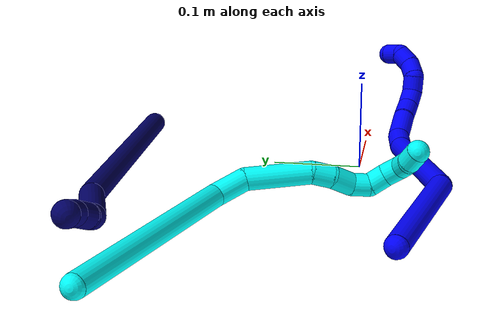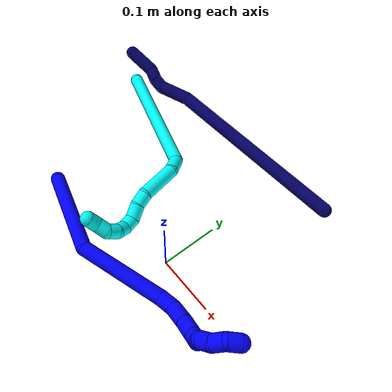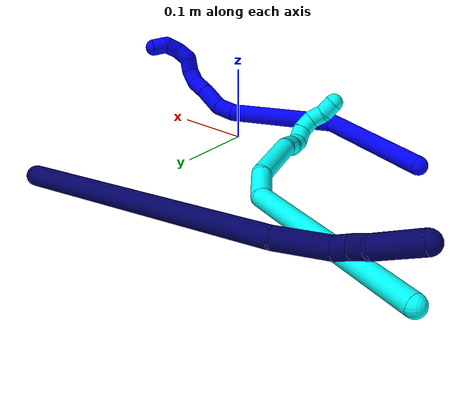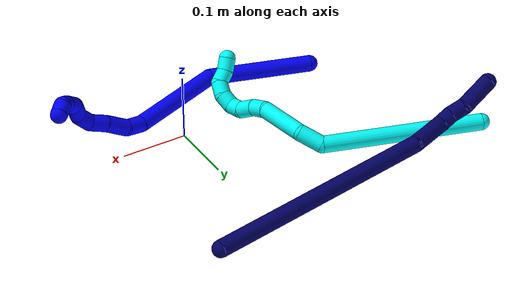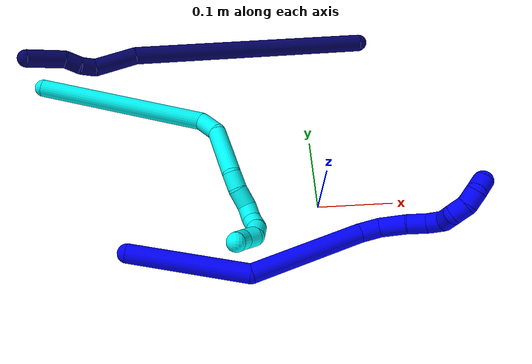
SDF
<sdf version="1.7">
 <world name="default">
  <model name="photoneo_s_sensor">
   <static>1</static>
   <pose>0 0 2 1.57079 1.57079 3.14159</pose>
   <link name="link">
    <inertial><mass>0.1</mass></inertial>
    <sensor name="sensor" type="depth">
     <update_rate>30</update_rate>
     <camera>
      <horizontal_fov>1.22</horizontal_fov>
      <image><width>1920</width><height>1200</height><format>B8G8R8</format></image>
      <clip><near>0.1</near><far>4</far></clip>
      <depth_camera><output>points</output></depth_camera>
     </camera>
     <plugin name="camera_plugin" filename="libgazebo_ros_depth_camera.so">
      <baseline>0.2</baseline>
      <alwaysOn>1</alwaysOn>
      <updateRate>0.0</updateRate>
      <cameraName>camera_ir</cameraName>
      <imageTopicName>/camera/color/image_raw</imageTopicName>
      <cameraInfoTopicName>/camera/color/camera_info</cameraInfoTopicName>
      <depthImageTopicName>/camera/depth/image_raw</depthImageTopicName>
      <depthImageCameraInfoTopicName>/camera/depth/camera_info</depthImageCameraInfoTopicName>
      <pointCloudTopicName>/camera/depth/points</pointCloudTopicName>
      <frameName>fr_optical</frameName>
      <pointCloudCutoff>0.1</pointCloudCutoff>
      <pointCloudCutoffMax>2.0</pointCloudCutoffMax>
      <distortionK1>0</distortionK1>
      <distortionK2>0</distortionK2>
      <distortionK3>0</distortionK3>
      <distortionT1>0</distortionT1>
      <distortionT2>0</distortionT2>
      <CxPrime>0</CxPrime>
      <Cx>0</Cx>
      <Cy>0</Cy>
      <focalLength>0</focalLength>
      <hackBaseline>0</hackBaseline>
     </plugin>
    </sensor>
   </link>
  </model>
  <model name="bin">
   <static>1</static>
   <link name="bottom">
    <collision name="collision-bottom">
     <pose>0 0 -0.01 0 -0 0</pose>
     <geometry><box><size>0.8 0.6 0.02</size></box></geometry>
     <surface>
      <friction><ode><mu>100</mu><mu2>100</mu2></ode></friction>
      <contact><collide_bitmask>65535</collide_bitmask></contact>
     </surface>
    </collision>
   </link>
   <link name="west_wall">
    <collision name="collision-west_wall">
     <pose>-0.41 0 0.1 0 -0 0</pose>
     <geometry><box><size>0.02 0.6 0.2</size></box></geometry>
     <surface>
      <friction><ode><mu>100</mu><mu2>100</mu2></ode></friction>
      <contact><collide_bitmask>65535</collide_bitmask></contact>
     </surface>
    </collision>
   </link>
   <link name="east_wall">
    <collision name="collision-east_wall">
     <pose>0.41 0 0.1 0 -0 0</pose>
     <geometry><box><size>0.02 0.6 0.2</size></box></geometry>
     <surface>
      <friction><ode><mu>100</mu><mu2>100</mu2></ode></friction>
      <contact><collide_bitmask>65535</collide_bitmask></contact>
     </surface>
    </collision>
   </link>
   <link name="south_wall">
    <collision name="collision-south_wall">
     <pose>0 -0.31 0.1 0 -0 0</pose>
     <geometry><box><size>0.8 0.02 0.2</size></box></geometry>
     <surface>
      <friction><ode><mu>100</mu><mu2>100</mu2></ode></friction>
      <contact><collide_bitmask>65535</collide_bitmask></contact>
     </surface>
    </collision>
   </link>
   <link name="north_wall">
    <collision name="collision-north_wall">
     <pose>0 0.31 0.1 0 -0 0</pose>
     <geometry><box><size>0.8 0.02 0.2</size></box></geometry>
     <surface>
      <friction><ode><mu>100</mu><mu2>100</mu2></ode></friction>
      <contact><collide_bitmask>65535</collide_bitmask></contact>
     </surface>
    </collision>
   </link>
  </model>
  <model name="1">
   <static>0</static>
   <link name="1">
    <collision name="collision-cylinder-e_1_1_4">
     <pose>0.017236 0.002004 -0.077901 -3.11587 0.217678 -2.90726</pose>
     <geometry><cylinder><radius>0.0125</radius><length>0.159621</length></cylinder></geometry>
     <surface>
      <friction><ode><mu>1.16</mu><mu2>1.16</mu2><slip1>0</slip1><slip2>0</slip2></ode></friction>
      <contact><ode><kp>1e+06</kp><kd>1</kd><max_vel>0</max_vel><min_depth>0.001</min_depth></ode></contact>
     </surface>
    </collision>
    <visual name="visual-cylinder-e_1_1_4">
     <pose>0.017236 0.002004 -0.077901 -3.11587 0.217678 -2.90726</pose>
     <geometry><cylinder><radius>0.0125</radius><length>0.159621</length></cylinder></geometry>
     <material><ambient>0 0 1 1</ambient></material>
    </visual>
    <collision name="collision-cylinder-e_2_4_5">
     <pose>0.060237 0.044857 -0.214349 -2.53241 0.346358 -1.01555</pose>
     <geometry><cylinder><radius>0.0125</radius><length>0.15179</length></cylinder></geometry>
     <surface>
      <friction><ode><mu>1.16</mu><mu2>1.16</mu2><slip1>0</slip1><slip2>0</slip2></ode></friction>
      <contact><ode><kp>1e+06</kp><kd>1</kd><max_vel>0</max_vel><min_depth>0.001</min_depth></ode></contact>
     </surface>
    </collision>
    <visual name="visual-cylinder-e_2_4_5">
     <pose>0.060237 0.044857 -0.214349 -2.53241 0.346358 -1.01555</pose>
     <geometry><cylinder><radius>0.0125</radius><length>0.15179</length></cylinder></geometry>
     <material><ambient>0 0 1 1</ambient></material>
    </visual>
    <collision name="collision-cylinder-e_3_5_6">
     <pose>0.092342 0.089831 -0.283835 -2.78096 0.496932 -1.89549</pose>
     <geometry><cylinder><radius>0.0125</radius><length>0.026601</length></cylinder></geometry>
     <surface>
      <friction><ode><mu>1.16</mu><mu2>1.16</mu2><slip1>0</slip1><slip2>0</slip2></ode></friction>
      <contact><ode><kp>1e+06</kp><kd>1</kd><max_vel>0</max_vel><min_depth>0.001</min_depth></ode></contact>
     </surface>
    </collision>
    <visual name="visual-cylinder-e_3_5_6">
     <pose>0.092342 0.089831 -0.283835 -2.78096 0.496932 -1.89549</pose>
     <geometry><cylinder><radius>0.0125</radius><length>0.026601</length></cylinder></geometry>
     <material><ambient>0 0 1 1</ambient></material>
    </visual>
    <collision name="collision-cylinder-e_4_6_7">
     <pose>0.109317 0.092621 -0.308574 3.04512 0.654322 2.85898</pose>
     <geometry><cylinder><radius>0.0125</radius><length>0.034946</length></cylinder></geometry>
     <surface>
      <friction><ode><mu>1.16</mu><mu2>1.16</mu2><slip1>0</slip1><slip2>0</slip2></ode></friction>
      <contact><ode><kp>1e+06</kp><kd>1</kd><max_vel>0</max_vel><min_depth>0.001</min_depth></ode></contact>
     </surface>
    </collision>
    <visual name="visual-cylinder-e_4_6_7">
     <pose>0.109317 0.092621 -0.308574 3.04512 0.654322 2.85898</pose>
     <geometry><cylinder><radius>0.0125</radius><length>0.034946</length></cylinder></geometry>
     <material><ambient>0 0 1 1</ambient></material>
    </visual>
    <collision name="collision-cylinder-e_5_7_8">
     <pose>0.126132 0.09102 -0.333576 3.11791 0.504036 3.0497</pose>
     <geometry><cylinder><radius>0.0125</radius><length>0.025593</length></cylinder></geometry>
     <surface>
      <friction><ode><mu>1.16</mu><mu2>1.16</mu2><slip1>0</slip1><slip2>0</slip2></ode></friction>
      <contact><ode><kp>1e+06</kp><kd>1</kd><max_vel>0</max_vel><min_depth>0.001</min_depth></ode></contact>
     </surface>
    </collision>
    <visual name="visual-cylinder-e_5_7_8">
     <pose>0.126132 0.09102 -0.333576 3.11791 0.504036 3.0497</pose>
     <geometry><cylinder><radius>0.0125</radius><length>0.025593</length></cylinder></geometry>
     <material><ambient>0 0 1 1</ambient></material>
    </visual>
    <collision name="collision-cylinder-e_6_8_9">
     <pose>0.139952 0.087854 -0.351361 2.72653 0.815486 2.23444</pose>
     <geometry><cylinder><radius>0.0125</radius><length>0.020986</length></cylinder></geometry>
     <surface>
      <friction><ode><mu>1.16</mu><mu2>1.16</mu2><slip1>0</slip1><slip2>0</slip2></ode></friction>
      <contact><ode><kp>1e+06</kp><kd>1</kd><max_vel>0</max_vel><min_depth>0.001</min_depth></ode></contact>
     </surface>
    </collision>
    <visual name="visual-cylinder-e_6_8_9">
     <pose>0.139952 0.087854 -0.351361 2.72653 0.815486 2.23444</pose>
     <geometry><cylinder><radius>0.0125</radius><length>0.020986</length></cylinder></geometry>
     <material><ambient>0 0 1 1</ambient></material>
    </visual>
    <collision name="collision-cylinder-e_7_9_10">
     <pose>0.15677 0.081054 -0.359055 1.84864 1.15485 1.42433</pose>
     <geometry><cylinder><radius>0.0125</radius><length>0.02007</length></cylinder></geometry>
     <surface>
      <friction><ode><mu>1.16</mu><mu2>1.16</mu2><slip1>0</slip1><slip2>0</slip2></ode></friction>
      <contact><ode><kp>1e+06</kp><kd>1</kd><max_vel>0</max_vel><min_depth>0.001</min_depth></ode></contact>
     </surface>
    </collision>
    <visual name="visual-cylinder-e_7_9_10">
     <pose>0.15677 0.081054 -0.359055 1.84864 1.15485 1.42433</pose>
     <geometry><cylinder><radius>0.0125</radius><length>0.02007</length></cylinder></geometry>
     <material><ambient>0 0 1 1</ambient></material>
    </visual>
    <collision name="collision-cylinder-e_8_10_11">
     <pose>0.174473 0.079323 -0.365291 -2.74133 0.992514 -2.4247</pose>
     <geometry><cylinder><radius>0.0125</radius><length>0.020356</length></cylinder></geometry>
     <surface>
      <friction><ode><mu>1.16</mu><mu2>1.16</mu2><slip1>0</slip1><slip2>0</slip2></ode></friction>
      <contact><ode><kp>1e+06</kp><kd>1</kd><max_vel>0</max_vel><min_depth>0.001</min_depth></ode></contact>
     </surface>
    </collision>
    <visual name="visual-cylinder-e_8_10_11">
     <pose>0.174473 0.079323 -0.365291 -2.74133 0.992514 -2.4247</pose>
     <geometry><cylinder><radius>0.0125</radius><length>0.020356</length></cylinder></geometry>
     <material><ambient>0 0 1 1</ambient></material>
    </visual>
    <collision name="collision-cylinder-e_9_11_12">
     <pose>0.191255 0.086582 -0.372851 -2.01718 0.971278 -1.39467</pose>
     <geometry><cylinder><radius>0.0125</radius><length>0.020007</length></cylinder></geometry>
     <surface>
      <friction><ode><mu>1.16</mu><mu2>1.16</mu2><slip1>0</slip1><slip2>0</slip2></ode></friction>
      <contact><ode><kp>1e+06</kp><kd>1</kd><max_vel>0</max_vel><min_depth>0.001</min_depth></ode></contact>
     </surface>
    </collision>
    <visual name="visual-cylinder-e_9_11_12">
     <pose>0.191255 0.086582 -0.372851 -2.01718 0.971278 -1.39467</pose>
     <geometry><cylinder><radius>0.0125</radius><length>0.020007</length></cylinder></geometry>
     <material><ambient>0 0 1 1</ambient></material>
    </visual>
    <collision name="collision-cylinder-e_10_12_2">
     <pose>0.202468 0.100505 -0.378971 -1.96585 0.299445 -0.445182</pose>
     <geometry><cylinder><radius>0.0125</radius><length>0.02003</length></cylinder></geometry>
     <surface>
      <friction><ode><mu>1.16</mu><mu2>1.16</mu2><slip1>0</slip1><slip2>0</slip2></ode></friction>
      <contact><ode><kp>1e+06</kp><kd>1</kd><max_vel>0</max_vel><min_depth>0.001</min_depth></ode></contact>
     </surface>
    </collision>
    <visual name="visual-cylinder-e_10_12_2">
     <pose>0.202468 0.100505 -0.378971 -1.96585 0.299445 -0.445182</pose>
     <geometry><cylinder><radius>0.0125</radius><length>0.02003</length></cylinder></geometry>
     <material><ambient>0 0 1 1</ambient></material>
    </visual>
    <collision name="collision-sphere-2">
     <pose>0.205422 0.109338 -0.382653 0 -0 0</pose>
     <geometry><sphere><radius>0.0125</radius></sphere></geometry>
     <surface>
      <friction><ode><mu>1.16</mu><mu2>1.16</mu2><slip1>0</slip1><slip2>0</slip2></ode></friction>
      <contact><ode><kp>1e+06</kp><kd>1</kd><max_vel>0</max_vel><min_depth>0.001</min_depth></ode></contact>
     </surface>
    </collision>
    <visual name="visual-sphere-2">
     <pose>0.205422 0.109338 -0.382653 0 -0 0</pose>
     <geometry><sphere><radius>0.0125</radius></sphere></geometry>
     <material><ambient>0 0 1 1</ambient></material>
    </visual>
    <collision name="collision-sphere-12">
     <pose>0.199514 0.091673 -0.375288 0 -0 0</pose>
     <geometry><sphere><radius>0.0125</radius></sphere></geometry>
     <surface>
      <friction><ode><mu>1.16</mu><mu2>1.16</mu2><slip1>0</slip1><slip2>0</slip2></ode></friction>
      <contact><ode><kp>1e+06</kp><kd>1</kd><max_vel>0</max_vel><min_depth>0.001</min_depth></ode></contact>
     </surface>
    </collision>
    <visual name="visual-sphere-12">
     <pose>0.199514 0.091673 -0.375288 0 -0 0</pose>
     <geometry><sphere><radius>0.0125</radius></sphere></geometry>
     <material><ambient>0 0 1 1</ambient></material>
    </visual>
    <collision name="collision-sphere-11">
     <pose>0.182996 0.08149 -0.370414 0 -0 0</pose>
     <geometry><sphere><radius>0.0125</radius></sphere></geometry>
     <surface>
      <friction><ode><mu>1.16</mu><mu2>1.16</mu2><slip1>0</slip1><slip2>0</slip2></ode></friction>
      <contact><ode><kp>1e+06</kp><kd>1</kd><max_vel>0</max_vel><min_depth>0.001</min_depth></ode></contact>
     </surface>
    </collision>
    <visual name="visual-sphere-11">
     <pose>0.182996 0.08149 -0.370414 0 -0 0</pose>
     <geometry><sphere><radius>0.0125</radius></sphere></geometry>
     <material><ambient>0 0 1 1</ambient></material>
    </visual>
    <collision name="collision-sphere-10">
     <pose>0.16595 0.077155 -0.360167 0 -0 0</pose>
     <geometry><sphere><radius>0.0125</radius></sphere></geometry>
     <surface>
      <friction><ode><mu>1.16</mu><mu2>1.16</mu2><slip1>0</slip1><slip2>0</slip2></ode></friction>
      <contact><ode><kp>1e+06</kp><kd>1</kd><max_vel>0</max_vel><min_depth>0.001</min_depth></ode></contact>
     </surface>
    </collision>
    <visual name="visual-sphere-10">
     <pose>0.16595 0.077155 -0.360167 0 -0 0</pose>
     <geometry><sphere><radius>0.0125</radius></sphere></geometry>
     <material><ambient>0 0 1 1</ambient></material>
    </visual>
    <collision name="collision-sphere-9">
     <pose>0.147591 0.084953 -0.357943 0 -0 0</pose>
     <geometry><sphere><radius>0.0125</radius></sphere></geometry>
     <surface>
      <friction><ode><mu>1.16</mu><mu2>1.16</mu2><slip1>0</slip1><slip2>0</slip2></ode></friction>
      <contact><ode><kp>1e+06</kp><kd>1</kd><max_vel>0</max_vel><min_depth>0.001</min_depth></ode></contact>
     </surface>
    </collision>
    <visual name="visual-sphere-9">
     <pose>0.147591 0.084953 -0.357943 0 -0 0</pose>
     <geometry><sphere><radius>0.0125</radius></sphere></geometry>
     <material><ambient>0 0 1 1</ambient></material>
    </visual>
    <collision name="collision-sphere-4">
     <pose>0.034472 0.004008 -0.155803 0 -0 0</pose>
     <geometry><sphere><radius>0.0125</radius></sphere></geometry>
     <surface>
      <friction><ode><mu>1.16</mu><mu2>1.16</mu2><slip1>0</slip1><slip2>0</slip2></ode></friction>
      <contact><ode><kp>1e+06</kp><kd>1</kd><max_vel>0</max_vel><min_depth>0.001</min_depth></ode></contact>
     </surface>
    </collision>
    <visual name="visual-sphere-4">
     <pose>0.034472 0.004008 -0.155803 0 -0 0</pose>
     <geometry><sphere><radius>0.0125</radius></sphere></geometry>
     <material><ambient>0 0 1 1</ambient></material>
    </visual>
    <collision name="collision-sphere-1">
     <geometry><sphere><radius>0.0125</radius></sphere></geometry>
     <surface>
      <friction><ode><mu>1.16</mu><mu2>1.16</mu2><slip1>0</slip1><slip2>0</slip2></ode></friction>
      <contact><ode><kp>1e+06</kp><kd>1</kd><max_vel>0</max_vel><min_depth>0.001</min_depth></ode></contact>
     </surface>
    </collision>
    <visual name="visual-sphere-1">
     <geometry><sphere><radius>0.0125</radius></sphere></geometry>
     <material><ambient>0 0 1 1</ambient></material>
    </visual>
    <collision name="collision-sphere-8">
     <pose>0.132312 0.090755 -0.344778 0 -0 0</pose>
     <geometry><sphere><radius>0.0125</radius></sphere></geometry>
     <surface>
      <friction><ode><mu>1.16</mu><mu2>1.16</mu2><slip1>0</slip1><slip2>0</slip2></ode></friction>
      <contact><ode><kp>1e+06</kp><kd>1</kd><max_vel>0</max_vel><min_depth>0.001</min_depth></ode></contact>
     </surface>
    </collision>
    <visual name="visual-sphere-8">
     <pose>0.132312 0.090755 -0.344778 0 -0 0</pose>
     <geometry><sphere><radius>0.0125</radius></sphere></geometry>
     <material><ambient>0 0 1 1</ambient></material>
    </visual>
    <collision name="collision-sphere-5">
     <pose>0.086001 0.085705 -0.272895 0 -0 0</pose>
     <geometry><sphere><radius>0.0125</radius></sphere></geometry>
     <surface>
      <friction><ode><mu>1.16</mu><mu2>1.16</mu2><slip1>0</slip1><slip2>0</slip2></ode></friction>
      <contact><ode><kp>1e+06</kp><kd>1</kd><max_vel>0</max_vel><min_depth>0.001</min_depth></ode></contact>
     </surface>
    </collision>
    <visual name="visual-sphere-5">
     <pose>0.086001 0.085705 -0.272895 0 -0 0</pose>
     <geometry><sphere><radius>0.0125</radius></sphere></geometry>
     <material><ambient>0 0 1 1</ambient></material>
    </visual>
    <collision name="collision-sphere-6">
     <pose>0.098682 0.093956 -0.294775 0 -0 0</pose>
     <geometry><sphere><radius>0.0125</radius></sphere></geometry>
     <surface>
      <friction><ode><mu>1.16</mu><mu2>1.16</mu2><slip1>0</slip1><slip2>0</slip2></ode></friction>
      <contact><ode><kp>1e+06</kp><kd>1</kd><max_vel>0</max_vel><min_depth>0.001</min_depth></ode></contact>
     </surface>
    </collision>
    <visual name="visual-sphere-6">
     <pose>0.098682 0.093956 -0.294775 0 -0 0</pose>
     <geometry><sphere><radius>0.0125</radius></sphere></geometry>
     <material><ambient>0 0 1 1</ambient></material>
    </visual>
    <collision name="collision-sphere-7">
     <pose>0.119951 0.091285 -0.322374 0 -0 0</pose>
     <geometry><sphere><radius>0.0125</radius></sphere></geometry>
     <surface>
      <friction><ode><mu>1.16</mu><mu2>1.16</mu2><slip1>0</slip1><slip2>0</slip2></ode></friction>
      <contact><ode><kp>1e+06</kp><kd>1</kd><max_vel>0</max_vel><min_depth>0.001</min_depth></ode></contact>
     </surface>
    </collision>
    <visual name="visual-sphere-7">
     <pose>0.119951 0.091285 -0.322374 0 -0 0</pose>
     <geometry><sphere><radius>0.0125</radius></sphere></geometry>
     <material><ambient>0 0 1 1</ambient></material>
    </visual>
    <inertial>
     <pose>0.077832 0.04783 -0.217816 0 -0 0</pose>
     <mass>0.5</mass>
     <inertia>
      <ixx>-0.000488</ixx>
      <ixy>0</ixy>
      <ixz>0</ixz>
      <iyy>-3.9e-05</iyy>
      <iyz>0</iyz>
      <izz>-0.000387</izz>
     </inertia>
    </inertial>
   </link>
   <pose>-0.251462 -0.054768 0.011497 -1.23347 -1.10526 0.906471</pose>
  </model>
  <model name="3">
   <static>0</static>
   <link name="3">
    <collision name="collision-cylinder-e_1_1_4">
     <pose>0.018949 -0.042752 -0.111891 2.77663 0.1569 0.805422</pose>
     <geometry><cylinder><radius>0.0125</radius><length>0.242539</length></cylinder></geometry>
     <surface>
      <friction><ode><mu>1.16</mu><mu2>1.16</mu2><slip1>0</slip1><slip2>0</slip2></ode></friction>
      <contact><ode><kp>1e+06</kp><kd>1</kd><max_vel>0</max_vel><min_depth>0.001</min_depth></ode></contact>
     </surface>
    </collision>
    <visual name="visual-cylinder-e_1_1_4">
     <pose>0.018949 -0.042752 -0.111891 2.77663 0.1569 0.805422</pose>
     <geometry><cylinder><radius>0.0125</radius><length>0.242539</length></cylinder></geometry>
     <material><ambient>0.003922 1 0.996078 1</ambient></material>
    </visual>
    <collision name="collision-cylinder-e_2_4_5">
     <pose>0.041914 -0.101374 -0.232384 2.0675 0.218868 0.364953</pose>
     <geometry><cylinder><radius>0.0125</radius><length>0.036987</length></cylinder></geometry>
     <surface>
      <friction><ode><mu>1.16</mu><mu2>1.16</mu2><slip1>0</slip1><slip2>0</slip2></ode></friction>
      <contact><ode><kp>1e+06</kp><kd>1</kd><max_vel>0</max_vel><min_depth>0.001</min_depth></ode></contact>
     </surface>
    </collision>
    <visual name="visual-cylinder-e_2_4_5">
     <pose>0.041914 -0.101374 -0.232384 2.0675 0.218868 0.364953</pose>
     <geometry><cylinder><radius>0.0125</radius><length>0.036987</length></cylinder></geometry>
     <material><ambient>0.003922 1 0.996078 1</ambient></material>
    </visual>
    <collision name="collision-cylinder-e_3_5_6">
     <pose>0.039726 -0.151547 -0.248789 1.79447 -0.174535 -0.218382</pose>
     <geometry><cylinder><radius>0.0125</radius><length>0.071442</length></cylinder></geometry>
     <surface>
      <friction><ode><mu>1.16</mu><mu2>1.16</mu2><slip1>0</slip1><slip2>0</slip2></ode></friction>
      <contact><ode><kp>1e+06</kp><kd>1</kd><max_vel>0</max_vel><min_depth>0.001</min_depth></ode></contact>
     </surface>
    </collision>
    <visual name="visual-cylinder-e_3_5_6">
     <pose>0.039726 -0.151547 -0.248789 1.79447 -0.174535 -0.218382</pose>
     <geometry><cylinder><radius>0.0125</radius><length>0.071442</length></cylinder></geometry>
     <material><ambient>0.003922 1 0.996078 1</ambient></material>
    </visual>
    <collision name="collision-cylinder-e_4_6_7">
     <pose>0.028199 -0.195252 -0.260893 1.9998 -0.475509 -0.721635</pose>
     <geometry><cylinder><radius>0.0125</radius><length>0.023262</length></cylinder></geometry>
     <surface>
      <friction><ode><mu>1.16</mu><mu2>1.16</mu2><slip1>0</slip1><slip2>0</slip2></ode></friction>
      <contact><ode><kp>1e+06</kp><kd>1</kd><max_vel>0</max_vel><min_depth>0.001</min_depth></ode></contact>
     </surface>
    </collision>
    <visual name="visual-cylinder-e_4_6_7">
     <pose>0.028199 -0.195252 -0.260893 1.9998 -0.475509 -0.721635</pose>
     <geometry><cylinder><radius>0.0125</radius><length>0.023262</length></cylinder></geometry>
     <material><ambient>0.003922 1 0.996078 1</ambient></material>
    </visual>
    <collision name="collision-cylinder-e_5_7_8">
     <pose>0.016056 -0.212527 -0.272218 2.29933 -0.573819 -1.16493</pose>
     <geometry><cylinder><radius>0.0125</radius><length>0.025121</length></cylinder></geometry>
     <surface>
      <friction><ode><mu>1.16</mu><mu2>1.16</mu2><slip1>0</slip1><slip2>0</slip2></ode></friction>
      <contact><ode><kp>1e+06</kp><kd>1</kd><max_vel>0</max_vel><min_depth>0.001</min_depth></ode></contact>
     </surface>
    </collision>
    <visual name="visual-cylinder-e_5_7_8">
     <pose>0.016056 -0.212527 -0.272218 2.29933 -0.573819 -1.16493</pose>
     <geometry><cylinder><radius>0.0125</radius><length>0.025121</length></cylinder></geometry>
     <material><ambient>0.003922 1 0.996078 1</ambient></material>
    </visual>
    <collision name="collision-cylinder-e_6_8_9">
     <pose>0.006179 -0.229511 -0.282061 1.87097 -0.310225 -0.417981</pose>
     <geometry><cylinder><radius>0.0125</radius><length>0.020036</length></cylinder></geometry>
     <surface>
      <friction><ode><mu>1.16</mu><mu2>1.16</mu2><slip1>0</slip1><slip2>0</slip2></ode></friction>
      <contact><ode><kp>1e+06</kp><kd>1</kd><max_vel>0</max_vel><min_depth>0.001</min_depth></ode></contact>
     </surface>
    </collision>
    <visual name="visual-cylinder-e_6_8_9">
     <pose>0.006179 -0.229511 -0.282061 1.87097 -0.310225 -0.417981</pose>
     <geometry><cylinder><radius>0.0125</radius><length>0.020036</length></cylinder></geometry>
     <material><ambient>0.003922 1 0.996078 1</ambient></material>
    </visual>
    <collision name="collision-cylinder-e_7_9_10">
     <pose>0.00601 -0.248278 -0.285973 1.68334 0.289002 0.322939</pose>
     <geometry><cylinder><radius>0.0125</radius><length>0.020272</length></cylinder></geometry>
     <surface>
      <friction><ode><mu>1.16</mu><mu2>1.16</mu2><slip1>0</slip1><slip2>0</slip2></ode></friction>
      <contact><ode><kp>1e+06</kp><kd>1</kd><max_vel>0</max_vel><min_depth>0.001</min_depth></ode></contact>
     </surface>
    </collision>
    <visual name="visual-cylinder-e_7_9_10">
     <pose>0.00601 -0.248278 -0.285973 1.68334 0.289002 0.322939</pose>
     <geometry><cylinder><radius>0.0125</radius><length>0.020272</length></cylinder></geometry>
     <material><ambient>0.003922 1 0.996078 1</ambient></material>
    </visual>
    <collision name="collision-cylinder-e_8_10_11">
     <pose>0.011025 -0.267317 -0.28377 1.2332 0.2106 0.149545</pose>
     <geometry><cylinder><radius>0.0125</radius><length>0.020342</length></cylinder></geometry>
     <surface>
      <friction><ode><mu>1.16</mu><mu2>1.16</mu2><slip1>0</slip1><slip2>0</slip2></ode></friction>
      <contact><ode><kp>1e+06</kp><kd>1</kd><max_vel>0</max_vel><min_depth>0.001</min_depth></ode></contact>
     </surface>
    </collision>
    <visual name="visual-cylinder-e_8_10_11">
     <pose>0.011025 -0.267317 -0.28377 1.2332 0.2106 0.149545</pose>
     <geometry><cylinder><radius>0.0125</radius><length>0.020342</length></cylinder></geometry>
     <material><ambient>0.003922 1 0.996078 1</ambient></material>
    </visual>
    <collision name="collision-cylinder-e_9_11_12">
     <pose>0.014802 -0.281755 -0.272005 0.537923 0.165824 0.045805</pose>
     <geometry><cylinder><radius>0.0125</radius><length>0.02</length></cylinder></geometry>
     <surface>
      <friction><ode><mu>1.16</mu><mu2>1.16</mu2><slip1>0</slip1><slip2>0</slip2></ode></friction>
      <contact><ode><kp>1e+06</kp><kd>1</kd><max_vel>0</max_vel><min_depth>0.001</min_depth></ode></contact>
     </surface>
    </collision>
    <visual name="visual-cylinder-e_9_11_12">
     <pose>0.014802 -0.281755 -0.272005 0.537923 0.165824 0.045805</pose>
     <geometry><cylinder><radius>0.0125</radius><length>0.02</length></cylinder></geometry>
     <material><ambient>0.003922 1 0.996078 1</ambient></material>
    </visual>
    <collision name="collision-cylinder-e_10_12_2">
     <pose>0.020629 -0.2932 -0.257078 0.780242 0.430861 0.179478</pose>
     <geometry><cylinder><radius>0.0125</radius><length>0.02</length></cylinder></geometry>
     <surface>
      <friction><ode><mu>1.16</mu><mu2>1.16</mu2><slip1>0</slip1><slip2>0</slip2></ode></friction>
      <contact><ode><kp>1e+06</kp><kd>1</kd><max_vel>0</max_vel><min_depth>0.001</min_depth></ode></contact>
     </surface>
    </collision>
    <visual name="visual-cylinder-e_10_12_2">
     <pose>0.020629 -0.2932 -0.257078 0.780242 0.430861 0.179478</pose>
     <geometry><cylinder><radius>0.0125</radius><length>0.02</length></cylinder></geometry>
     <material><ambient>0.003922 1 0.996078 1</ambient></material>
    </visual>
    <collision name="collision-sphere-2">
     <pose>0.024806 -0.299592 -0.25062 0 -0 0</pose>
     <geometry><sphere><radius>0.0125</radius></sphere></geometry>
     <surface>
      <friction><ode><mu>1.16</mu><mu2>1.16</mu2><slip1>0</slip1><slip2>0</slip2></ode></friction>
      <contact><ode><kp>1e+06</kp><kd>1</kd><max_vel>0</max_vel><min_depth>0.001</min_depth></ode></contact>
     </surface>
    </collision>
    <visual name="visual-sphere-2">
     <pose>0.024806 -0.299592 -0.25062 0 -0 0</pose>
     <geometry><sphere><radius>0.0125</radius></sphere></geometry>
     <material><ambient>0.003922 1 0.996078 1</ambient></material>
    </visual>
    <collision name="collision-sphere-12">
     <pose>0.016452 -0.286808 -0.263535 0 -0 0</pose>
     <geometry><sphere><radius>0.0125</radius></sphere></geometry>
     <surface>
      <friction><ode><mu>1.16</mu><mu2>1.16</mu2><slip1>0</slip1><slip2>0</slip2></ode></friction>
      <contact><ode><kp>1e+06</kp><kd>1</kd><max_vel>0</max_vel><min_depth>0.001</min_depth></ode></contact>
     </surface>
    </collision>
    <visual name="visual-sphere-12">
     <pose>0.016452 -0.286808 -0.263535 0 -0 0</pose>
     <geometry><sphere><radius>0.0125</radius></sphere></geometry>
     <material><ambient>0.003922 1 0.996078 1</ambient></material>
    </visual>
    <collision name="collision-sphere-11">
     <pose>0.013151 -0.276702 -0.280475 0 -0 0</pose>
     <geometry><sphere><radius>0.0125</radius></sphere></geometry>
     <surface>
      <friction><ode><mu>1.16</mu><mu2>1.16</mu2><slip1>0</slip1><slip2>0</slip2></ode></friction>
      <contact><ode><kp>1e+06</kp><kd>1</kd><max_vel>0</max_vel><min_depth>0.001</min_depth></ode></contact>
     </surface>
    </collision>
    <visual name="visual-sphere-11">
     <pose>0.013151 -0.276702 -0.280475 0 -0 0</pose>
     <geometry><sphere><radius>0.0125</radius></sphere></geometry>
     <material><ambient>0.003922 1 0.996078 1</ambient></material>
    </visual>
    <collision name="collision-sphere-10">
     <pose>0.008899 -0.257932 -0.287064 0 -0 0</pose>
     <geometry><sphere><radius>0.0125</radius></sphere></geometry>
     <surface>
      <friction><ode><mu>1.16</mu><mu2>1.16</mu2><slip1>0</slip1><slip2>0</slip2></ode></friction>
      <contact><ode><kp>1e+06</kp><kd>1</kd><max_vel>0</max_vel><min_depth>0.001</min_depth></ode></contact>
     </surface>
    </collision>
    <visual name="visual-sphere-10">
     <pose>0.008899 -0.257932 -0.287064 0 -0 0</pose>
     <geometry><sphere><radius>0.0125</radius></sphere></geometry>
     <material><ambient>0.003922 1 0.996078 1</ambient></material>
    </visual>
    <collision name="collision-sphere-9">
     <pose>0.003121 -0.238624 -0.284882 0 -0 0</pose>
     <geometry><sphere><radius>0.0125</radius></sphere></geometry>
     <surface>
      <friction><ode><mu>1.16</mu><mu2>1.16</mu2><slip1>0</slip1><slip2>0</slip2></ode></friction>
      <contact><ode><kp>1e+06</kp><kd>1</kd><max_vel>0</max_vel><min_depth>0.001</min_depth></ode></contact>
     </surface>
    </collision>
    <visual name="visual-sphere-9">
     <pose>0.003121 -0.238624 -0.284882 0 -0 0</pose>
     <geometry><sphere><radius>0.0125</radius></sphere></geometry>
     <material><ambient>0.003922 1 0.996078 1</ambient></material>
    </visual>
    <collision name="collision-sphere-4">
     <pose>0.037898 -0.085503 -0.223781 0 -0 0</pose>
     <geometry><sphere><radius>0.0125</radius></sphere></geometry>
     <surface>
      <friction><ode><mu>1.16</mu><mu2>1.16</mu2><slip1>0</slip1><slip2>0</slip2></ode></friction>
      <contact><ode><kp>1e+06</kp><kd>1</kd><max_vel>0</max_vel><min_depth>0.001</min_depth></ode></contact>
     </surface>
    </collision>
    <visual name="visual-sphere-4">
     <pose>0.037898 -0.085503 -0.223781 0 -0 0</pose>
     <geometry><sphere><radius>0.0125</radius></sphere></geometry>
     <material><ambient>0.003922 1 0.996078 1</ambient></material>
    </visual>
    <collision name="collision-sphere-1">
     <geometry><sphere><radius>0.0125</radius></sphere></geometry>
     <surface>
      <friction><ode><mu>1.16</mu><mu2>1.16</mu2><slip1>0</slip1><slip2>0</slip2></ode></friction>
      <contact><ode><kp>1e+06</kp><kd>1</kd><max_vel>0</max_vel><min_depth>0.001</min_depth></ode></contact>
     </surface>
    </collision>
    <visual name="visual-sphere-1">
     <geometry><sphere><radius>0.0125</radius></sphere></geometry>
     <material><ambient>0.003922 1 0.996078 1</ambient></material>
    </visual>
    <collision name="collision-sphere-8">
     <pose>0.009238 -0.220398 -0.279241 0 -0 0</pose>
     <geometry><sphere><radius>0.0125</radius></sphere></geometry>
     <surface>
      <friction><ode><mu>1.16</mu><mu2>1.16</mu2><slip1>0</slip1><slip2>0</slip2></ode></friction>
      <contact><ode><kp>1e+06</kp><kd>1</kd><max_vel>0</max_vel><min_depth>0.001</min_depth></ode></contact>
     </surface>
    </collision>
    <visual name="visual-sphere-8">
     <pose>0.009238 -0.220398 -0.279241 0 -0 0</pose>
     <geometry><sphere><radius>0.0125</radius></sphere></geometry>
     <material><ambient>0.003922 1 0.996078 1</ambient></material>
    </visual>
    <collision name="collision-sphere-5">
     <pose>0.045929 -0.117245 -0.240986 0 -0 0</pose>
     <geometry><sphere><radius>0.0125</radius></sphere></geometry>
     <surface>
      <friction><ode><mu>1.16</mu><mu2>1.16</mu2><slip1>0</slip1><slip2>0</slip2></ode></friction>
      <contact><ode><kp>1e+06</kp><kd>1</kd><max_vel>0</max_vel><min_depth>0.001</min_depth></ode></contact>
     </surface>
    </collision>
    <visual name="visual-sphere-5">
     <pose>0.045929 -0.117245 -0.240986 0 -0 0</pose>
     <geometry><sphere><radius>0.0125</radius></sphere></geometry>
     <material><ambient>0.003922 1 0.996078 1</ambient></material>
    </visual>
    <collision name="collision-sphere-6">
     <pose>0.033523 -0.185849 -0.256592 0 -0 0</pose>
     <geometry><sphere><radius>0.0125</radius></sphere></geometry>
     <surface>
      <friction><ode><mu>1.16</mu><mu2>1.16</mu2><slip1>0</slip1><slip2>0</slip2></ode></friction>
      <contact><ode><kp>1e+06</kp><kd>1</kd><max_vel>0</max_vel><min_depth>0.001</min_depth></ode></contact>
     </surface>
    </collision>
    <visual name="visual-sphere-6">
     <pose>0.033523 -0.185849 -0.256592 0 -0 0</pose>
     <geometry><sphere><radius>0.0125</radius></sphere></geometry>
     <material><ambient>0.003922 1 0.996078 1</ambient></material>
    </visual>
    <collision name="collision-sphere-7">
     <pose>0.022874 -0.204656 -0.265195 0 -0 0</pose>
     <geometry><sphere><radius>0.0125</radius></sphere></geometry>
     <surface>
      <friction><ode><mu>1.16</mu><mu2>1.16</mu2><slip1>0</slip1><slip2>0</slip2></ode></friction>
      <contact><ode><kp>1e+06</kp><kd>1</kd><max_vel>0</max_vel><min_depth>0.001</min_depth></ode></contact>
     </surface>
    </collision>
    <visual name="visual-sphere-7">
     <pose>0.022874 -0.204656 -0.265195 0 -0 0</pose>
     <geometry><sphere><radius>0.0125</radius></sphere></geometry>
     <material><ambient>0.003922 1 0.996078 1</ambient></material>
    </visual>
    <inertial>
     <pose>0.022444 -0.122789 -0.188434 0 -0 0</pose>
     <mass>0.5</mass>
     <inertia><ixx>0.001714</ixx><ixy>0</ixy><ixz>0</ixz><iyy>9e-05</iyy><iyz>0</iyz><izz>0.000267</izz></inertia>
    </inertial>
   </link>
   <pose>-0.38211 0.212615 0.012603 -0.847382 -1.14564 0.874855</pose>
  </model>
  <model name="7">
   <static>0</static>
   <link name="7">
    <collision name="collision-cylinder-e_1_1_4">
     <pose>-0.084957 -0.003918 0.148174 0.026435 -0.520452 -0.007039</pose>
     <geometry><cylinder><radius>0.0125</radius><length>0.341693</length></cylinder></geometry>
     <surface>
      <friction><ode><mu>1.16</mu><mu2>1.16</mu2><slip1>0</slip1><slip2>0</slip2></ode></friction>
      <contact><ode><kp>1e+06</kp><kd>1</kd><max_vel>0</max_vel><min_depth>0.001</min_depth></ode></contact>
     </surface>
    </collision>
    <visual name="visual-cylinder-e_1_1_4">
     <pose>-0.084957 -0.003918 0.148174 0.026435 -0.520452 -0.007039</pose>
     <geometry><cylinder><radius>0.0125</radius><length>0.341693</length></cylinder></geometry>
     <material><ambient>0.003922 0 0.403922 1</ambient></material>
    </visual>
    <collision name="collision-cylinder-e_2_4_5">
     <pose>-0.177946 -0.008397 0.325905 0.019005 -0.265269 -0.002536</pose>
     <geometry><cylinder><radius>0.0125</radius><length>0.061269</length></cylinder></geometry>
     <surface>
      <friction><ode><mu>1.16</mu><mu2>1.16</mu2><slip1>0</slip1><slip2>0</slip2></ode></friction>
      <contact><ode><kp>1e+06</kp><kd>1</kd><max_vel>0</max_vel><min_depth>0.001</min_depth></ode></contact>
     </surface>
    </collision>
    <visual name="visual-cylinder-e_2_4_5">
     <pose>-0.177946 -0.008397 0.325905 0.019005 -0.265269 -0.002536</pose>
     <geometry><cylinder><radius>0.0125</radius><length>0.061269</length></cylinder></geometry>
     <material><ambient>0.003922 0 0.403922 1</ambient></material>
    </visual>
    <collision name="collision-cylinder-e_3_5_6">
     <pose>-0.191403 -0.006022 0.363684 -0.343161 -0.556099 0.098845</pose>
     <geometry><cylinder><radius>0.0125</radius><length>0.020556</length></cylinder></geometry>
     <surface>
      <friction><ode><mu>1.16</mu><mu2>1.16</mu2><slip1>0</slip1><slip2>0</slip2></ode></friction>
      <contact><ode><kp>1e+06</kp><kd>1</kd><max_vel>0</max_vel><min_depth>0.001</min_depth></ode></contact>
     </surface>
    </collision>
    <visual name="visual-cylinder-e_3_5_6">
     <pose>-0.191403 -0.006022 0.363684 -0.343161 -0.556099 0.098845</pose>
     <geometry><cylinder><radius>0.0125</radius><length>0.020556</length></cylinder></geometry>
     <material><ambient>0.003922 0 0.403922 1</ambient></material>
    </visual>
    <collision name="collision-cylinder-e_4_6_7">
     <pose>-0.205606 4.6e-05 0.378911 -0.420239 -0.852306 0.193034</pose>
     <geometry><cylinder><radius>0.0125</radius><length>0.02332</length></cylinder></geometry>
     <surface>
      <friction><ode><mu>1.16</mu><mu2>1.16</mu2><slip1>0</slip1><slip2>0</slip2></ode></friction>
      <contact><ode><kp>1e+06</kp><kd>1</kd><max_vel>0</max_vel><min_depth>0.001</min_depth></ode></contact>
     </surface>
    </collision>
    <visual name="visual-cylinder-e_4_6_7">
     <pose>-0.205606 4.6e-05 0.378911 -0.420239 -0.852306 0.193034</pose>
     <geometry><cylinder><radius>0.0125</radius><length>0.02332</length></cylinder></geometry>
     <material><ambient>0.003922 0 0.403922 1</ambient></material>
    </visual>
    <collision name="collision-cylinder-e_5_7_2">
     <pose>-0.225688 0.010568 0.408813 -0.312267 -0.439249 0.070249</pose>
     <geometry><cylinder><radius>0.0125</radius><length>0.053161</length></cylinder></geometry>
     <surface>
      <friction><ode><mu>1.16</mu><mu2>1.16</mu2><slip1>0</slip1><slip2>0</slip2></ode></friction>
      <contact><ode><kp>1e+06</kp><kd>1</kd><max_vel>0</max_vel><min_depth>0.001</min_depth></ode></contact>
     </surface>
    </collision>
    <visual name="visual-cylinder-e_5_7_2">
     <pose>-0.225688 0.010568 0.408813 -0.312267 -0.439249 0.070249</pose>
     <geometry><cylinder><radius>0.0125</radius><length>0.053161</length></cylinder></geometry>
     <material><ambient>0.003922 0 0.403922 1</ambient></material>
    </visual>
    <collision name="collision-sphere-2">
     <pose>-0.236991 0.017959 0.431707 0 -0 0</pose>
     <geometry><sphere><radius>0.0125</radius></sphere></geometry>
     <surface>
      <friction><ode><mu>1.16</mu><mu2>1.16</mu2><slip1>0</slip1><slip2>0</slip2></ode></friction>
      <contact><ode><kp>1e+06</kp><kd>1</kd><max_vel>0</max_vel><min_depth>0.001</min_depth></ode></contact>
     </surface>
    </collision>
    <visual name="visual-sphere-2">
     <pose>-0.236991 0.017959 0.431707 0 -0 0</pose>
     <geometry><sphere><radius>0.0125</radius></sphere></geometry>
     <material><ambient>0.003922 0 0.403922 1</ambient></material>
    </visual>
    <collision name="collision-sphere-7">
     <pose>-0.214384 0.003177 0.385919 0 -0 0</pose>
     <geometry><sphere><radius>0.0125</radius></sphere></geometry>
     <surface>
      <friction><ode><mu>1.16</mu><mu2>1.16</mu2><slip1>0</slip1><slip2>0</slip2></ode></friction>
      <contact><ode><kp>1e+06</kp><kd>1</kd><max_vel>0</max_vel><min_depth>0.001</min_depth></ode></contact>
     </surface>
    </collision>
    <visual name="visual-sphere-7">
     <pose>-0.214384 0.003177 0.385919 0 -0 0</pose>
     <geometry><sphere><radius>0.0125</radius></sphere></geometry>
     <material><ambient>0.003922 0 0.403922 1</ambient></material>
    </visual>
    <collision name="collision-sphere-6">
     <pose>-0.196829 -0.003085 0.371904 0 -0 0</pose>
     <geometry><sphere><radius>0.0125</radius></sphere></geometry>
     <surface>
      <friction><ode><mu>1.16</mu><mu2>1.16</mu2><slip1>0</slip1><slip2>0</slip2></ode></friction>
      <contact><ode><kp>1e+06</kp><kd>1</kd><max_vel>0</max_vel><min_depth>0.001</min_depth></ode></contact>
     </surface>
    </collision>
    <visual name="visual-sphere-6">
     <pose>-0.196829 -0.003085 0.371904 0 -0 0</pose>
     <geometry><sphere><radius>0.0125</radius></sphere></geometry>
     <material><ambient>0.003922 0 0.403922 1</ambient></material>
    </visual>
    <collision name="collision-sphere-5">
     <pose>-0.185978 -0.008959 0.355463 0 -0 0</pose>
     <geometry><sphere><radius>0.0125</radius></sphere></geometry>
     <surface>
      <friction><ode><mu>1.16</mu><mu2>1.16</mu2><slip1>0</slip1><slip2>0</slip2></ode></friction>
      <contact><ode><kp>1e+06</kp><kd>1</kd><max_vel>0</max_vel><min_depth>0.001</min_depth></ode></contact>
     </surface>
    </collision>
    <visual name="visual-sphere-5">
     <pose>-0.185978 -0.008959 0.355463 0 -0 0</pose>
     <geometry><sphere><radius>0.0125</radius></sphere></geometry>
     <material><ambient>0.003922 0 0.403922 1</ambient></material>
    </visual>
    <collision name="collision-sphere-1">
     <geometry><sphere><radius>0.0125</radius></sphere></geometry>
     <surface>
      <friction><ode><mu>1.16</mu><mu2>1.16</mu2><slip1>0</slip1><slip2>0</slip2></ode></friction>
      <contact><ode><kp>1e+06</kp><kd>1</kd><max_vel>0</max_vel><min_depth>0.001</min_depth></ode></contact>
     </surface>
    </collision>
    <visual name="visual-sphere-1">
     <geometry><sphere><radius>0.0125</radius></sphere></geometry>
     <material><ambient>0.003922 0 0.403922 1</ambient></material>
    </visual>
    <collision name="collision-sphere-4">
     <pose>-0.169915 -0.007836 0.296348 0 -0 0</pose>
     <geometry><sphere><radius>0.0125</radius></sphere></geometry>
     <surface>
      <friction><ode><mu>1.16</mu><mu2>1.16</mu2><slip1>0</slip1><slip2>0</slip2></ode></friction>
      <contact><ode><kp>1e+06</kp><kd>1</kd><max_vel>0</max_vel><min_depth>0.001</min_depth></ode></contact>
     </surface>
    </collision>
    <visual name="visual-sphere-4">
     <pose>-0.169915 -0.007836 0.296348 0 -0 0</pose>
     <geometry><sphere><radius>0.0125</radius></sphere></geometry>
     <material><ambient>0.003922 0 0.403922 1</ambient></material>
    </visual>
    <inertial>
     <pose>-0.121318 -0.002828 0.217286 0 -0 0</pose>
     <mass>0.5</mass>
     <inertia>
      <ixx>0.002895</ixx>
      <ixy>0</ixy>
      <ixz>0</ixz>
      <iyy>0.003358</iyy>
      <iyz>0</iyz>
      <izz>0.00178</izz>
     </inertia>
    </inertial>
   </link>
   <pose>0.095844 0.27171 0.011487 1.5908 0.258601 -0.967205</pose>
  </model>
 </world>
</sdf>
